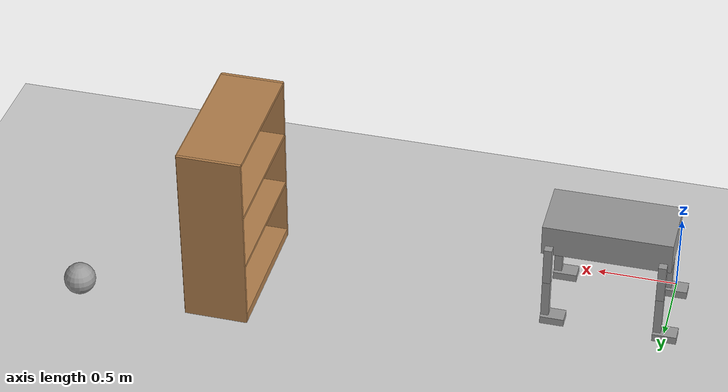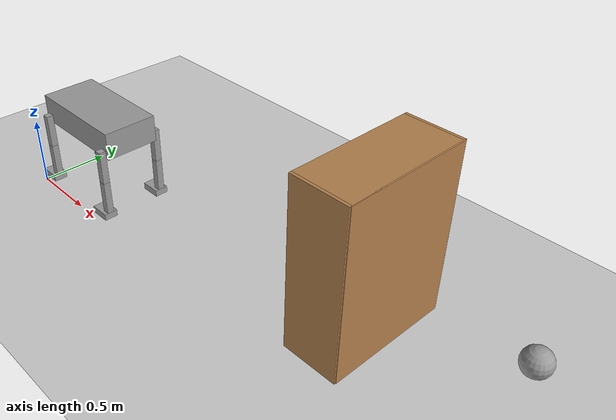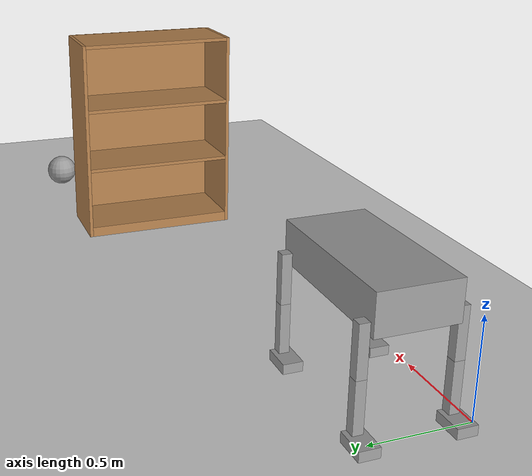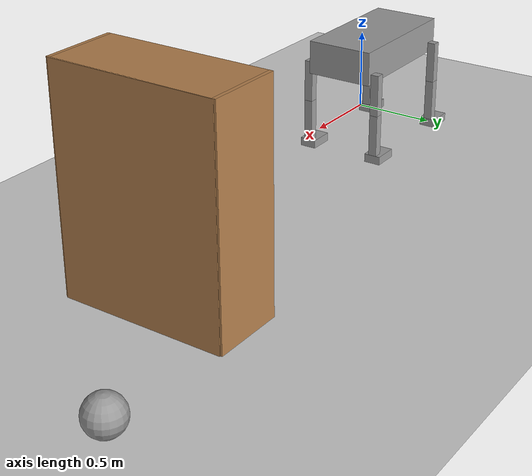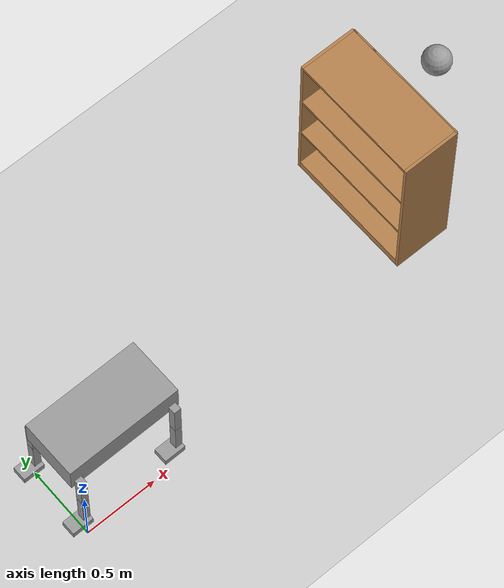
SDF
<sdf version="1.6">
 <world name="default">
  <model name="ground_plane">
   <static>1</static>
   <link name="link">
    <collision name="collision">
     <geometry><plane><normal>0 0 1</normal><size>100 100</size></plane></geometry>
     <surface><friction><ode><mu>100</mu><mu2>50</mu2></ode></friction></surface>
    </collision>
    <visual name="visual">
     <cast_shadows>0</cast_shadows>
     <geometry><plane><normal>0 0 1</normal><size>100 100</size></plane></geometry>
     <material>
      <script><uri>file://media/materials/scripts/gazebo.material</uri><name>Gazebo/Grey</name></script>
     </material>
    </visual>
   </link>
  </model>
  <model name="bookshelf">
   <static>1</static>
   <link name="link">
    <inertial><mass>1</mass></inertial>
    <collision name="back">
     <pose>0 0.005 0.6 0 -0 0</pose>
     <geometry><box><size>0.9 0.01 1.2</size></box></geometry>
    </collision>
    <visual name="visual1">
     <pose>0 0.005 0.6 0 -0 0</pose>
     <geometry><box><size>0.9 0.01 1.2</size></box></geometry>
     <material>
      <script><uri>file://media/materials/scripts/gazebo.material</uri><name>Gazebo/Wood</name></script>
     </material>
    </visual>
    <collision name="left_side">
     <pose>0.45 -0.195 0.6 0 -0 0</pose>
     <geometry><box><size>0.02 0.4 1.2</size></box></geometry>
    </collision>
    <visual name="visual2">
     <pose>0.45 -0.195 0.6 0 -0 0</pose>
     <geometry><box><size>0.02 0.4 1.2</size></box></geometry>
     <material>
      <script><uri>file://media/materials/scripts/gazebo.material</uri><name>Gazebo/Wood</name></script>
     </material>
    </visual>
    <collision name="right_side">
     <pose>-0.45 -0.195 0.6 0 -0 0</pose>
     <geometry><box><size>0.02 0.4 1.2</size></box></geometry>
    </collision>
    <visual name="visual3">
     <pose>-0.45 -0.195 0.6 0 -0 0</pose>
     <geometry><box><size>0.02 0.4 1.2</size></box></geometry>
     <material>
      <script><uri>file://media/materials/scripts/gazebo.material</uri><name>Gazebo/Wood</name></script>
     </material>
    </visual>
    <collision name="bottom">
     <pose>0 -0.195 0.03 0 -0 0</pose>
     <geometry><box><size>0.88 0.4 0.06</size></box></geometry>
    </collision>
    <visual name="visual4">
     <pose>0 -0.195 0.03 0 -0 0</pose>
     <geometry><box><size>0.88 0.4 0.06</size></box></geometry>
     <material>
      <script><uri>file://media/materials/scripts/gazebo.material</uri><name>Gazebo/Wood</name></script>
     </material>
    </visual>
    <collision name="top">
     <pose>0 -0.195 1.19 0 -0 0</pose>
     <geometry><box><size>0.88 0.4 0.02</size></box></geometry>
    </collision>
    <visual name="visual5">
     <pose>0 -0.195 1.19 0 -0 0</pose>
     <geometry><box><size>0.88 0.4 0.02</size></box></geometry>
     <material>
      <script><uri>file://media/materials/scripts/gazebo.material</uri><name>Gazebo/Wood</name></script>
     </material>
    </visual>
    <collision name="low_shelf">
     <pose>0 -0.195 0.43 0 -0 0</pose>
     <geometry><box><size>0.88 0.4 0.02</size></box></geometry>
    </collision>
    <visual name="visual6">
     <pose>0 -0.195 0.43 0 -0 0</pose>
     <geometry><box><size>0.88 0.4 0.02</size></box></geometry>
     <material>
      <script><uri>file://media/materials/scripts/gazebo.material</uri><name>Gazebo/Wood</name></script>
     </material>
    </visual>
    <collision name="high_shelf">
     <pose>0 -0.195 0.8 0 -0 0</pose>
     <geometry><box><size>0.88 0.4 0.02</size></box></geometry>
    </collision>
    <visual name="visual7">
     <pose>0 -0.195 0.8 0 -0 0</pose>
     <geometry><box><size>0.88 0.4 0.02</size></box></geometry>
     <material>
      <script><uri>file://media/materials/scripts/gazebo.material</uri><name>Gazebo/Wood</name></script>
     </material>
    </visual>
   </link>
   <pose>2.91289 0.586626 0 0 0 -1.5708</pose>
  </model>
  <model name="robot_0">
   <link name="link_0">
    <pose>-0 -5 1 0 -0 0</pose>
    <inertial>
     <mass>1</mass>
     <inertia>
      <ixx>0.166667</ixx>
      <ixy>0</ixy>
      <ixz>0</ixz>
      <iyy>0.166667</iyy>
      <iyz>0</iyz>
      <izz>0.166667</izz>
     </inertia>
    </inertial>
    <visual name="visual">
     <geometry><box><size>0.8 0.4 0.2</size></box></geometry>
     <material>
      <lighting>1</lighting>
      <script><uri>file://media/materials/scripts/gazebo.material</uri><name>Gazebo/Grey</name></script>
      <shader type="pixel"><normal_map>__default__</normal_map></shader>
      <ambient>0.3 0.3 0.3 1</ambient>
      <diffuse>0.7 0.7 0.7 1</diffuse>
      <specular>0.01 0.01 0.01 1</specular>
      <emissive>0 0 0 1</emissive>
     </material>
    </visual>
    <collision name="collision">
     <geometry><box><size>0.8 0.4 0.2</size></box></geometry>
     <surface>
      <friction>
       <ode><mu>1</mu><mu2>1</mu2><fdir1>0 0 0</fdir1><slip1>0</slip1><slip2>0</slip2></ode>
       <torsional>
        <coefficient>1</coefficient>
        <patch_radius>0</patch_radius>
        <surface_radius>0</surface_radius>
        <use_patch_radius>1</use_patch_radius>
        <ode><slip>0</slip></ode>
       </torsional>
      </friction>
      <bounce><restitution_coefficient>0</restitution_coefficient><threshold>1e+06</threshold></bounce>
      <contact>
       <collide_without_contact>0</collide_without_contact>
       <collide_without_contact_bitmask>1</collide_without_contact_bitmask>
       <collide_bitmask>1</collide_bitmask>
       <ode>
        <soft_cfm>0</soft_cfm>
        <soft_erp>0.2</soft_erp>
        <kp>1e+13</kp>
        <kd>1</kd>
        <max_vel>0.01</max_vel>
        <min_depth>0</min_depth>
       </ode>
       <bullet>
        <split_impulse>1</split_impulse>
        <split_impulse_penetration_threshold>-0.01</split_impulse_penetration_threshold>
        <soft_cfm>0</soft_cfm>
        <soft_erp>0.2</soft_erp>
        <kp>1e+13</kp>
        <kd>1</kd>
       </bullet>
      </contact>
     </surface>
    </collision>
   </link>
   <link name="link_0_0">
    <pose>-0.4 -5.225 0.4375 0 -0 0</pose>
    <inertial>
     <mass>1</mass>
     <inertia>
      <ixx>0.166667</ixx>
      <ixy>0</ixy>
      <ixz>0</ixz>
      <iyy>0.166667</iyy>
      <iyz>0</iyz>
      <izz>0.166667</izz>
     </inertia>
    </inertial>
    <visual name="visual">
     <geometry><box><size>0.15 0.1 0.05</size></box></geometry>
     <material>
      <lighting>1</lighting>
      <script><uri>file://media/materials/scripts/gazebo.material</uri><name>Gazebo/Grey</name></script>
      <shader type="pixel"><normal_map>__default__</normal_map></shader>
      <ambient>0.3 0.3 0.3 1</ambient>
      <diffuse>0.7 0.7 0.7 1</diffuse>
      <specular>0.01 0.01 0.01 1</specular>
      <emissive>0 0 0 1</emissive>
     </material>
    </visual>
    <collision name="collision">
     <geometry><box><size>0.15 0.1 0.05</size></box></geometry>
     <surface>
      <friction>
       <ode><mu>1</mu><mu2>1</mu2><fdir1>0 0 0</fdir1><slip1>0</slip1><slip2>0</slip2></ode>
       <torsional>
        <coefficient>1</coefficient>
        <patch_radius>0</patch_radius>
        <surface_radius>0</surface_radius>
        <use_patch_radius>1</use_patch_radius>
        <ode><slip>0</slip></ode>
       </torsional>
      </friction>
      <bounce><restitution_coefficient>0</restitution_coefficient><threshold>1e+06</threshold></bounce>
      <contact>
       <collide_without_contact>0</collide_without_contact>
       <collide_without_contact_bitmask>1</collide_without_contact_bitmask>
       <collide_bitmask>1</collide_bitmask>
       <ode>
        <soft_cfm>0</soft_cfm>
        <soft_erp>0.2</soft_erp>
        <kp>1e+13</kp>
        <kd>1</kd>
        <max_vel>0.01</max_vel>
        <min_depth>0</min_depth>
       </ode>
       <bullet>
        <split_impulse>1</split_impulse>
        <split_impulse_penetration_threshold>-0.01</split_impulse_penetration_threshold>
        <soft_cfm>0</soft_cfm>
        <soft_erp>0.2</soft_erp>
        <kp>1e+13</kp>
        <kd>1</kd>
       </bullet>
      </contact>
     </surface>
    </collision>
   </link>
   <link name="link_0_0_clone">
    <pose>-0.4 -4.775 0.4375 0 -0 0</pose>
    <inertial>
     <mass>1</mass>
     <inertia>
      <ixx>0.166667</ixx>
      <ixy>0</ixy>
      <ixz>0</ixz>
      <iyy>0.166667</iyy>
      <iyz>0</iyz>
      <izz>0.166667</izz>
     </inertia>
    </inertial>
    <visual name="visual_0">
     <geometry><box><size>0.15 0.1 0.05</size></box></geometry>
     <material>
      <lighting>1</lighting>
      <script><uri>file://media/materials/scripts/gazebo.material</uri><name>Gazebo/Grey</name></script>
      <shader type="pixel"><normal_map>__default__</normal_map></shader>
      <ambient>0.3 0.3 0.3 1</ambient>
      <diffuse>0.7 0.7 0.7 1</diffuse>
      <specular>0.01 0.01 0.01 1</specular>
      <emissive>0 0 0 1</emissive>
     </material>
    </visual>
    <collision name="collision">
     <geometry><box><size>0.15 0.1 0.05</size></box></geometry>
     <surface>
      <friction>
       <ode><mu>1</mu><mu2>1</mu2><fdir1>0 0 0</fdir1><slip1>0</slip1><slip2>0</slip2></ode>
       <torsional>
        <coefficient>1</coefficient>
        <patch_radius>0</patch_radius>
        <surface_radius>0</surface_radius>
        <use_patch_radius>1</use_patch_radius>
        <ode><slip>0</slip></ode>
       </torsional>
      </friction>
      <bounce><restitution_coefficient>0</restitution_coefficient><threshold>1e+06</threshold></bounce>
      <contact>
       <collide_without_contact>0</collide_without_contact>
       <collide_without_contact_bitmask>1</collide_without_contact_bitmask>
       <collide_bitmask>1</collide_bitmask>
       <ode>
        <soft_cfm>0</soft_cfm>
        <soft_erp>0.2</soft_erp>
        <kp>1e+13</kp>
        <kd>1</kd>
        <max_vel>0.01</max_vel>
        <min_depth>0</min_depth>
       </ode>
       <bullet>
        <split_impulse>1</split_impulse>
        <split_impulse_penetration_threshold>-0.01</split_impulse_penetration_threshold>
        <soft_cfm>0</soft_cfm>
        <soft_erp>0.2</soft_erp>
        <kp>1e+13</kp>
        <kd>1</kd>
       </bullet>
      </contact>
     </surface>
    </collision>
   </link>
   <link name="link_0_0_clone_0">
    <pose>0.3 -5.225 0.4375 0 -0 0</pose>
    <inertial>
     <mass>1</mass>
     <inertia>
      <ixx>0.166667</ixx>
      <ixy>0</ixy>
      <ixz>0</ixz>
      <iyy>0.166667</iyy>
      <iyz>0</iyz>
      <izz>0.166667</izz>
     </inertia>
    </inertial>
    <visual name="visual_0">
     <geometry><box><size>0.15 0.1 0.05</size></box></geometry>
     <material>
      <lighting>1</lighting>
      <script><uri>file://media/materials/scripts/gazebo.material</uri><name>Gazebo/Grey</name></script>
      <shader type="pixel"><normal_map>__default__</normal_map></shader>
      <ambient>0.3 0.3 0.3 1</ambient>
      <diffuse>0.7 0.7 0.7 1</diffuse>
      <specular>0.01 0.01 0.01 1</specular>
      <emissive>0 0 0 1</emissive>
     </material>
    </visual>
    <collision name="collision">
     <geometry><box><size>0.15 0.1 0.05</size></box></geometry>
     <surface>
      <friction>
       <ode><mu>1</mu><mu2>1</mu2><fdir1>0 0 0</fdir1><slip1>0</slip1><slip2>0</slip2></ode>
       <torsional>
        <coefficient>1</coefficient>
        <patch_radius>0</patch_radius>
        <surface_radius>0</surface_radius>
        <use_patch_radius>1</use_patch_radius>
        <ode><slip>0</slip></ode>
       </torsional>
      </friction>
      <bounce><restitution_coefficient>0</restitution_coefficient><threshold>1e+06</threshold></bounce>
      <contact>
       <collide_without_contact>0</collide_without_contact>
       <collide_without_contact_bitmask>1</collide_without_contact_bitmask>
       <collide_bitmask>1</collide_bitmask>
       <ode>
        <soft_cfm>0</soft_cfm>
        <soft_erp>0.2</soft_erp>
        <kp>1e+13</kp>
        <kd>1</kd>
        <max_vel>0.01</max_vel>
        <min_depth>0</min_depth>
       </ode>
       <bullet>
        <split_impulse>1</split_impulse>
        <split_impulse_penetration_threshold>-0.01</split_impulse_penetration_threshold>
        <soft_cfm>0</soft_cfm>
        <soft_erp>0.2</soft_erp>
        <kp>1e+13</kp>
        <kd>1</kd>
       </bullet>
      </contact>
     </surface>
    </collision>
   </link>
   <link name="link_0_0_clone_0_clone">
    <pose>0.3 -4.775 0.4375 0 -0 0</pose>
    <inertial>
     <mass>1</mass>
     <inertia>
      <ixx>0.166667</ixx>
      <ixy>0</ixy>
      <ixz>0</ixz>
      <iyy>0.166667</iyy>
      <iyz>0</iyz>
      <izz>0.166667</izz>
     </inertia>
    </inertial>
    <visual name="visual_0">
     <geometry><box><size>0.15 0.1 0.05</size></box></geometry>
     <material>
      <lighting>1</lighting>
      <script><uri>file://media/materials/scripts/gazebo.material</uri><name>Gazebo/Grey</name></script>
      <shader type="pixel"><normal_map>__default__</normal_map></shader>
      <ambient>0.3 0.3 0.3 1</ambient>
      <diffuse>0.7 0.7 0.7 1</diffuse>
      <specular>0.01 0.01 0.01 1</specular>
      <emissive>0 0 0 1</emissive>
     </material>
    </visual>
    <collision name="collision">
     <geometry><box><size>0.15 0.1 0.05</size></box></geometry>
     <surface>
      <friction>
       <ode><mu>1</mu><mu2>1</mu2><fdir1>0 0 0</fdir1><slip1>0</slip1><slip2>0</slip2></ode>
       <torsional>
        <coefficient>1</coefficient>
        <patch_radius>0</patch_radius>
        <surface_radius>0</surface_radius>
        <use_patch_radius>1</use_patch_radius>
        <ode><slip>0</slip></ode>
       </torsional>
      </friction>
      <bounce><restitution_coefficient>0</restitution_coefficient><threshold>1e+06</threshold></bounce>
      <contact>
       <collide_without_contact>0</collide_without_contact>
       <collide_without_contact_bitmask>1</collide_without_contact_bitmask>
       <collide_bitmask>1</collide_bitmask>
       <ode>
        <soft_cfm>0</soft_cfm>
        <soft_erp>0.2</soft_erp>
        <kp>1e+13</kp>
        <kd>1</kd>
        <max_vel>0.01</max_vel>
        <min_depth>0</min_depth>
       </ode>
       <bullet>
        <split_impulse>1</split_impulse>
        <split_impulse_penetration_threshold>-0.01</split_impulse_penetration_threshold>
        <soft_cfm>0</soft_cfm>
        <soft_erp>0.2</soft_erp>
        <kp>1e+13</kp>
        <kd>1</kd>
       </bullet>
      </contact>
     </surface>
    </collision>
   </link>
   <link name="link_2_clone_clone">
    <pose>-0.35 -5.225 0.8375 0 -0 0</pose>
    <inertial>
     <mass>1</mass>
     <inertia>
      <ixx>0.166667</ixx>
      <ixy>0</ixy>
      <ixz>0</ixz>
      <iyy>0.166667</iyy>
      <iyz>0</iyz>
      <izz>0.166667</izz>
     </inertia>
    </inertial>
    <visual name="visual">
     <geometry><box><size>0.05 0.05 0.25</size></box></geometry>
     <material>
      <lighting>1</lighting>
      <script><uri>file://media/materials/scripts/gazebo.material</uri><name>Gazebo/Grey</name></script>
      <shader type="pixel"><normal_map>__default__</normal_map></shader>
      <ambient>0.3 0.3 0.3 1</ambient>
      <diffuse>0.7 0.7 0.7 1</diffuse>
      <specular>0.01 0.01 0.01 1</specular>
      <emissive>0 0 0 1</emissive>
     </material>
    </visual>
    <collision name="collision">
     <geometry><box><size>0.05 0.05 0.25</size></box></geometry>
     <surface>
      <friction>
       <ode><mu>1</mu><mu2>1</mu2><fdir1>0 0 0</fdir1><slip1>0</slip1><slip2>0</slip2></ode>
       <torsional>
        <coefficient>1</coefficient>
        <patch_radius>0</patch_radius>
        <surface_radius>0</surface_radius>
        <use_patch_radius>1</use_patch_radius>
        <ode><slip>0</slip></ode>
       </torsional>
      </friction>
      <bounce><restitution_coefficient>0</restitution_coefficient><threshold>1e+06</threshold></bounce>
      <contact>
       <collide_without_contact>0</collide_without_contact>
       <collide_without_contact_bitmask>1</collide_without_contact_bitmask>
       <collide_bitmask>1</collide_bitmask>
       <ode>
        <soft_cfm>0</soft_cfm>
        <soft_erp>0.2</soft_erp>
        <kp>1e+13</kp>
        <kd>1</kd>
        <max_vel>0.01</max_vel>
        <min_depth>0</min_depth>
       </ode>
       <bullet>
        <split_impulse>1</split_impulse>
        <split_impulse_penetration_threshold>-0.01</split_impulse_penetration_threshold>
        <soft_cfm>0</soft_cfm>
        <soft_erp>0.2</soft_erp>
        <kp>1e+13</kp>
        <kd>1</kd>
       </bullet>
      </contact>
     </surface>
    </collision>
   </link>
   <link name="link_2_clone_clone_clone">
    <pose>0.35 -5.225 0.8375 0 -0 0</pose>
    <inertial>
     <mass>1</mass>
     <inertia>
      <ixx>0.166667</ixx>
      <ixy>0</ixy>
      <ixz>0</ixz>
      <iyy>0.166667</iyy>
      <iyz>0</iyz>
      <izz>0.166667</izz>
     </inertia>
    </inertial>
    <visual name="visual">
     <geometry><box><size>0.05 0.05 0.25</size></box></geometry>
     <material>
      <lighting>1</lighting>
      <script><uri>file://media/materials/scripts/gazebo.material</uri><name>Gazebo/Grey</name></script>
      <shader type="pixel"><normal_map>__default__</normal_map></shader>
      <ambient>0.3 0.3 0.3 1</ambient>
      <diffuse>0.7 0.7 0.7 1</diffuse>
      <specular>0.01 0.01 0.01 1</specular>
      <emissive>0 0 0 1</emissive>
     </material>
    </visual>
    <collision name="collision">
     <geometry><box><size>0.05 0.05 0.25</size></box></geometry>
     <surface>
      <friction>
       <ode><mu>1</mu><mu2>1</mu2><fdir1>0 0 0</fdir1><slip1>0</slip1><slip2>0</slip2></ode>
       <torsional>
        <coefficient>1</coefficient>
        <patch_radius>0</patch_radius>
        <surface_radius>0</surface_radius>
        <use_patch_radius>1</use_patch_radius>
        <ode><slip>0</slip></ode>
       </torsional>
      </friction>
      <bounce><restitution_coefficient>0</restitution_coefficient><threshold>1e+06</threshold></bounce>
      <contact>
       <collide_without_contact>0</collide_without_contact>
       <collide_without_contact_bitmask>1</collide_without_contact_bitmask>
       <collide_bitmask>1</collide_bitmask>
       <ode>
        <soft_cfm>0</soft_cfm>
        <soft_erp>0.2</soft_erp>
        <kp>1e+13</kp>
        <kd>1</kd>
        <max_vel>0.01</max_vel>
        <min_depth>0</min_depth>
       </ode>
       <bullet>
        <split_impulse>1</split_impulse>
        <split_impulse_penetration_threshold>-0.01</split_impulse_penetration_threshold>
        <soft_cfm>0</soft_cfm>
        <soft_erp>0.2</soft_erp>
        <kp>1e+13</kp>
        <kd>1</kd>
       </bullet>
      </contact>
     </surface>
    </collision>
   </link>
   <link name="link_2_clone_clone_clone_0">
    <pose>-0.35 -4.775 0.8375 0 -0 0</pose>
    <inertial>
     <mass>1</mass>
     <inertia>
      <ixx>0.166667</ixx>
      <ixy>0</ixy>
      <ixz>0</ixz>
      <iyy>0.166667</iyy>
      <iyz>0</iyz>
      <izz>0.166667</izz>
     </inertia>
    </inertial>
    <visual name="visual">
     <geometry><box><size>0.05 0.05 0.25</size></box></geometry>
     <material>
      <lighting>1</lighting>
      <script><uri>file://media/materials/scripts/gazebo.material</uri><name>Gazebo/Grey</name></script>
      <shader type="pixel"><normal_map>__default__</normal_map></shader>
      <ambient>0.3 0.3 0.3 1</ambient>
      <diffuse>0.7 0.7 0.7 1</diffuse>
      <specular>0.01 0.01 0.01 1</specular>
      <emissive>0 0 0 1</emissive>
     </material>
    </visual>
    <collision name="collision">
     <geometry><box><size>0.05 0.05 0.25</size></box></geometry>
     <surface>
      <friction>
       <ode><mu>1</mu><mu2>1</mu2><fdir1>0 0 0</fdir1><slip1>0</slip1><slip2>0</slip2></ode>
       <torsional>
        <coefficient>1</coefficient>
        <patch_radius>0</patch_radius>
        <surface_radius>0</surface_radius>
        <use_patch_radius>1</use_patch_radius>
        <ode><slip>0</slip></ode>
       </torsional>
      </friction>
      <bounce><restitution_coefficient>0</restitution_coefficient><threshold>1e+06</threshold></bounce>
      <contact>
       <collide_without_contact>0</collide_without_contact>
       <collide_without_contact_bitmask>1</collide_without_contact_bitmask>
       <collide_bitmask>1</collide_bitmask>
       <ode>
        <soft_cfm>0</soft_cfm>
        <soft_erp>0.2</soft_erp>
        <kp>1e+13</kp>
        <kd>1</kd>
        <max_vel>0.01</max_vel>
        <min_depth>0</min_depth>
       </ode>
       <bullet>
        <split_impulse>1</split_impulse>
        <split_impulse_penetration_threshold>-0.01</split_impulse_penetration_threshold>
        <soft_cfm>0</soft_cfm>
        <soft_erp>0.2</soft_erp>
        <kp>1e+13</kp>
        <kd>1</kd>
       </bullet>
      </contact>
     </surface>
    </collision>
   </link>
   <link name="link_2_clone_clone_clone_0_clone">
    <pose>0.35 -4.775 0.8375 0 -0 0</pose>
    <inertial>
     <mass>1</mass>
     <inertia>
      <ixx>0.166667</ixx>
      <ixy>0</ixy>
      <ixz>0</ixz>
      <iyy>0.166667</iyy>
      <iyz>0</iyz>
      <izz>0.166667</izz>
     </inertia>
    </inertial>
    <visual name="visual">
     <geometry><box><size>0.05 0.05 0.25</size></box></geometry>
     <material>
      <lighting>1</lighting>
      <script><uri>file://media/materials/scripts/gazebo.material</uri><name>Gazebo/Grey</name></script>
      <shader type="pixel"><normal_map>__default__</normal_map></shader>
      <ambient>0.3 0.3 0.3 1</ambient>
      <diffuse>0.7 0.7 0.7 1</diffuse>
      <specular>0.01 0.01 0.01 1</specular>
      <emissive>0 0 0 1</emissive>
     </material>
    </visual>
    <collision name="collision">
     <geometry><box><size>0.05 0.05 0.25</size></box></geometry>
     <surface>
      <friction>
       <ode><mu>1</mu><mu2>1</mu2><fdir1>0 0 0</fdir1><slip1>0</slip1><slip2>0</slip2></ode>
       <torsional>
        <coefficient>1</coefficient>
        <patch_radius>0</patch_radius>
        <surface_radius>0</surface_radius>
        <use_patch_radius>1</use_patch_radius>
        <ode><slip>0</slip></ode>
       </torsional>
      </friction>
      <bounce><restitution_coefficient>0</restitution_coefficient><threshold>1e+06</threshold></bounce>
      <contact>
       <collide_without_contact>0</collide_without_contact>
       <collide_without_contact_bitmask>1</collide_without_contact_bitmask>
       <collide_bitmask>1</collide_bitmask>
       <ode>
        <soft_cfm>0</soft_cfm>
        <soft_erp>0.2</soft_erp>
        <kp>1e+13</kp>
        <kd>1</kd>
        <max_vel>0.01</max_vel>
        <min_depth>0</min_depth>
       </ode>
       <bullet>
        <split_impulse>1</split_impulse>
        <split_impulse_penetration_threshold>-0.01</split_impulse_penetration_threshold>
        <soft_cfm>0</soft_cfm>
        <soft_erp>0.2</soft_erp>
        <kp>1e+13</kp>
        <kd>1</kd>
       </bullet>
      </contact>
     </surface>
    </collision>
   </link>
   <link name="link_2_clone_clone_clone_1">
    <pose>-0.35 -5.225 0.5875 0 -0 0</pose>
    <inertial>
     <mass>1</mass>
     <inertia>
      <ixx>0.166667</ixx>
      <ixy>0</ixy>
      <ixz>0</ixz>
      <iyy>0.166667</iyy>
      <iyz>0</iyz>
      <izz>0.166667</izz>
     </inertia>
    </inertial>
    <visual name="visual">
     <geometry><box><size>0.05 0.05 0.25</size></box></geometry>
     <material>
      <lighting>1</lighting>
      <script><uri>file://media/materials/scripts/gazebo.material</uri><name>Gazebo/Grey</name></script>
      <shader type="pixel"><normal_map>__default__</normal_map></shader>
      <ambient>0.3 0.3 0.3 1</ambient>
      <diffuse>0.7 0.7 0.7 1</diffuse>
      <specular>0.01 0.01 0.01 1</specular>
      <emissive>0 0 0 1</emissive>
     </material>
    </visual>
    <collision name="collision">
     <geometry><box><size>0.05 0.05 0.25</size></box></geometry>
     <surface>
      <friction>
       <ode><mu>1</mu><mu2>1</mu2><fdir1>0 0 0</fdir1><slip1>0</slip1><slip2>0</slip2></ode>
       <torsional>
        <coefficient>1</coefficient>
        <patch_radius>0</patch_radius>
        <surface_radius>0</surface_radius>
        <use_patch_radius>1</use_patch_radius>
        <ode><slip>0</slip></ode>
       </torsional>
      </friction>
      <bounce><restitution_coefficient>0</restitution_coefficient><threshold>1e+06</threshold></bounce>
      <contact>
       <collide_without_contact>0</collide_without_contact>
       <collide_without_contact_bitmask>1</collide_without_contact_bitmask>
       <collide_bitmask>1</collide_bitmask>
       <ode>
        <soft_cfm>0</soft_cfm>
        <soft_erp>0.2</soft_erp>
        <kp>1e+13</kp>
        <kd>1</kd>
        <max_vel>0.01</max_vel>
        <min_depth>0</min_depth>
       </ode>
       <bullet>
        <split_impulse>1</split_impulse>
        <split_impulse_penetration_threshold>-0.01</split_impulse_penetration_threshold>
        <soft_cfm>0</soft_cfm>
        <soft_erp>0.2</soft_erp>
        <kp>1e+13</kp>
        <kd>1</kd>
       </bullet>
      </contact>
     </surface>
    </collision>
   </link>
   <link name="link_2_clone_clone_clone_2">
    <pose>0.35 -5.225 0.5875 0 -0 0</pose>
    <inertial>
     <mass>1</mass>
     <inertia>
      <ixx>0.166667</ixx>
      <ixy>0</ixy>
      <ixz>0</ixz>
      <iyy>0.166667</iyy>
      <iyz>0</iyz>
      <izz>0.166667</izz>
     </inertia>
    </inertial>
    <visual name="visual">
     <geometry><box><size>0.05 0.05 0.25</size></box></geometry>
     <material>
      <lighting>1</lighting>
      <script><uri>file://media/materials/scripts/gazebo.material</uri><name>Gazebo/Grey</name></script>
      <shader type="pixel"><normal_map>__default__</normal_map></shader>
      <ambient>0.3 0.3 0.3 1</ambient>
      <diffuse>0.7 0.7 0.7 1</diffuse>
      <specular>0.01 0.01 0.01 1</specular>
      <emissive>0 0 0 1</emissive>
     </material>
    </visual>
    <collision name="collision">
     <geometry><box><size>0.05 0.05 0.25</size></box></geometry>
     <surface>
      <friction>
       <ode><mu>1</mu><mu2>1</mu2><fdir1>0 0 0</fdir1><slip1>0</slip1><slip2>0</slip2></ode>
       <torsional>
        <coefficient>1</coefficient>
        <patch_radius>0</patch_radius>
        <surface_radius>0</surface_radius>
        <use_patch_radius>1</use_patch_radius>
        <ode><slip>0</slip></ode>
       </torsional>
      </friction>
      <bounce><restitution_coefficient>0</restitution_coefficient><threshold>1e+06</threshold></bounce>
      <contact>
       <collide_without_contact>0</collide_without_contact>
       <collide_without_contact_bitmask>1</collide_without_contact_bitmask>
       <collide_bitmask>1</collide_bitmask>
       <ode>
        <soft_cfm>0</soft_cfm>
        <soft_erp>0.2</soft_erp>
        <kp>1e+13</kp>
        <kd>1</kd>
        <max_vel>0.01</max_vel>
        <min_depth>0</min_depth>
       </ode>
       <bullet>
        <split_impulse>1</split_impulse>
        <split_impulse_penetration_threshold>-0.01</split_impulse_penetration_threshold>
        <soft_cfm>0</soft_cfm>
        <soft_erp>0.2</soft_erp>
        <kp>1e+13</kp>
        <kd>1</kd>
       </bullet>
      </contact>
     </surface>
    </collision>
   </link>
   <link name="link_2_clone_clone_clone_2_clone">
    <pose>0.35 -4.775 0.5875 0 -0 0</pose>
    <inertial>
     <mass>1</mass>
     <inertia>
      <ixx>0.166667</ixx>
      <ixy>0</ixy>
      <ixz>0</ixz>
      <iyy>0.166667</iyy>
      <iyz>0</iyz>
      <izz>0.166667</izz>
     </inertia>
    </inertial>
    <visual name="visual">
     <geometry><box><size>0.05 0.05 0.25</size></box></geometry>
     <material>
      <lighting>1</lighting>
      <script><uri>file://media/materials/scripts/gazebo.material</uri><name>Gazebo/Grey</name></script>
      <shader type="pixel"><normal_map>__default__</normal_map></shader>
      <ambient>0.3 0.3 0.3 1</ambient>
      <diffuse>0.7 0.7 0.7 1</diffuse>
      <specular>0.01 0.01 0.01 1</specular>
      <emissive>0 0 0 1</emissive>
     </material>
    </visual>
    <collision name="collision">
     <geometry><box><size>0.05 0.05 0.25</size></box></geometry>
     <surface>
      <friction>
       <ode><mu>1</mu><mu2>1</mu2><fdir1>0 0 0</fdir1><slip1>0</slip1><slip2>0</slip2></ode>
       <torsional>
        <coefficient>1</coefficient>
        <patch_radius>0</patch_radius>
        <surface_radius>0</surface_radius>
        <use_patch_radius>1</use_patch_radius>
        <ode><slip>0</slip></ode>
       </torsional>
      </friction>
      <bounce><restitution_coefficient>0</restitution_coefficient><threshold>1e+06</threshold></bounce>
      <contact>
       <collide_without_contact>0</collide_without_contact>
       <collide_without_contact_bitmask>1</collide_without_contact_bitmask>
       <collide_bitmask>1</collide_bitmask>
       <ode>
        <soft_cfm>0</soft_cfm>
        <soft_erp>0.2</soft_erp>
        <kp>1e+13</kp>
        <kd>1</kd>
        <max_vel>0.01</max_vel>
        <min_depth>0</min_depth>
       </ode>
       <bullet>
        <split_impulse>1</split_impulse>
        <split_impulse_penetration_threshold>-0.01</split_impulse_penetration_threshold>
        <soft_cfm>0</soft_cfm>
        <soft_erp>0.2</soft_erp>
        <kp>1e+13</kp>
        <kd>1</kd>
       </bullet>
      </contact>
     </surface>
    </collision>
   </link>
   <link name="link_2_clone_clone_clone_2_clone_clone">
    <pose>-0.35 -4.775 0.5875 0 -0 0</pose>
    <inertial>
     <mass>1</mass>
     <inertia>
      <ixx>0.166667</ixx>
      <ixy>0</ixy>
      <ixz>0</ixz>
      <iyy>0.166667</iyy>
      <iyz>0</iyz>
      <izz>0.166667</izz>
     </inertia>
    </inertial>
    <visual name="visual">
     <geometry><box><size>0.05 0.05 0.25</size></box></geometry>
     <material>
      <lighting>1</lighting>
      <script><uri>file://media/materials/scripts/gazebo.material</uri><name>Gazebo/Grey</name></script>
      <shader type="pixel"><normal_map>__default__</normal_map></shader>
      <ambient>0.3 0.3 0.3 1</ambient>
      <diffuse>0.7 0.7 0.7 1</diffuse>
      <specular>0.01 0.01 0.01 1</specular>
      <emissive>0 0 0 1</emissive>
     </material>
    </visual>
    <collision name="collision">
     <geometry><box><size>0.05 0.05 0.25</size></box></geometry>
     <surface>
      <friction>
       <ode><mu>1</mu><mu2>1</mu2><fdir1>0 0 0</fdir1><slip1>0</slip1><slip2>0</slip2></ode>
       <torsional>
        <coefficient>1</coefficient>
        <patch_radius>0</patch_radius>
        <surface_radius>0</surface_radius>
        <use_patch_radius>1</use_patch_radius>
        <ode><slip>0</slip></ode>
       </torsional>
      </friction>
      <bounce><restitution_coefficient>0</restitution_coefficient><threshold>1e+06</threshold></bounce>
      <contact>
       <collide_without_contact>0</collide_without_contact>
       <collide_without_contact_bitmask>1</collide_without_contact_bitmask>
       <collide_bitmask>1</collide_bitmask>
       <ode>
        <soft_cfm>0</soft_cfm>
        <soft_erp>0.2</soft_erp>
        <kp>1e+13</kp>
        <kd>1</kd>
        <max_vel>0.01</max_vel>
        <min_depth>0</min_depth>
       </ode>
       <bullet>
        <split_impulse>1</split_impulse>
        <split_impulse_penetration_threshold>-0.01</split_impulse_penetration_threshold>
        <soft_cfm>0</soft_cfm>
        <soft_erp>0.2</soft_erp>
        <kp>1e+13</kp>
        <kd>1</kd>
       </bullet>
      </contact>
     </surface>
    </collision>
   </link>
   <joint name="link_0_JOINT_0_0" type="revolute">
    <parent>link_0</parent>
    <child>link_2_clone_clone_clone_0</child>
    <pose>0 0 0.09375 0 -0 0</pose>
    <axis>
     <xyz>0 1 0</xyz>
     <use_parent_model_frame>0</use_parent_model_frame>
     <limit><lower>-0.174533</lower><upper>0.174533</upper><effort>-1</effort><velocity>-1</velocity></limit>
     <dynamics>
      <spring_reference>0</spring_reference>
      <spring_stiffness>0</spring_stiffness>
      <damping>0</damping>
      <friction>0</friction>
     </dynamics>
    </axis>
    <physics>
     <ode><limit><cfm>0</cfm><erp>0.2</erp></limit><suspension><cfm>0</cfm><erp>0.2</erp></suspension></ode>
    </physics>
   </joint>
   <joint name="link_0_JOINT_0" type="revolute">
    <parent>link_0</parent>
    <child>link_2_clone_clone</child>
    <pose>0 0 0.09375 0 -0 0</pose>
    <axis>
     <xyz>0 -1 0</xyz>
     <use_parent_model_frame>0</use_parent_model_frame>
     <limit><lower>-0.174533</lower><upper>0.174533</upper><effort>-1</effort><velocity>-1</velocity></limit>
     <dynamics>
      <spring_reference>0</spring_reference>
      <spring_stiffness>0</spring_stiffness>
      <damping>0</damping>
      <friction>0</friction>
     </dynamics>
    </axis>
    <physics>
     <ode><limit><cfm>0</cfm><erp>0.2</erp></limit><suspension><cfm>0</cfm><erp>0.2</erp></suspension></ode>
    </physics>
   </joint>
   <joint name="link_0_JOINT_1" type="revolute">
    <parent>link_0</parent>
    <child>link_2_clone_clone_clone</child>
    <pose>0 0 0.09375 0 -0 0</pose>
    <axis>
     <xyz>0 -1 0</xyz>
     <use_parent_model_frame>0</use_parent_model_frame>
     <limit><lower>-0.174533</lower><upper>0.174533</upper><effort>-1</effort><velocity>-1</velocity></limit>
     <dynamics>
      <spring_reference>0</spring_reference>
      <spring_stiffness>0</spring_stiffness>
      <damping>0</damping>
      <friction>0</friction>
     </dynamics>
    </axis>
    <physics>
     <ode><limit><cfm>0</cfm><erp>0.2</erp></limit><suspension><cfm>0</cfm><erp>0.2</erp></suspension></ode>
    </physics>
   </joint>
   <joint name="link_0_JOINT_2" type="revolute">
    <parent>link_0</parent>
    <child>link_2_clone_clone_clone_0_clone</child>
    <pose>0 0 0.09375 0 -0 0</pose>
    <axis>
     <xyz>0 1 0</xyz>
     <use_parent_model_frame>0</use_parent_model_frame>
     <limit><lower>-0.174533</lower><upper>0.174533</upper><effort>-1</effort><velocity>-1</velocity></limit>
     <dynamics>
      <spring_reference>0</spring_reference>
      <spring_stiffness>0</spring_stiffness>
      <damping>0</damping>
      <friction>0</friction>
     </dynamics>
    </axis>
    <physics>
     <ode><limit><cfm>0</cfm><erp>0.2</erp></limit><suspension><cfm>0</cfm><erp>0.2</erp></suspension></ode>
    </physics>
   </joint>
   <joint name="link_2_clone_clone_JOINT_3" type="revolute">
    <parent>link_2_clone_clone</parent>
    <child>link_2_clone_clone_clone_1</child>
    <pose>0 0 0.125 0 -0 0</pose>
    <axis>
     <xyz>0 -1 0</xyz>
     <use_parent_model_frame>0</use_parent_model_frame>
     <limit><lower>-0.174533</lower><upper>0.174533</upper><effort>-1</effort><velocity>-1</velocity></limit>
     <dynamics>
      <spring_reference>0</spring_reference>
      <spring_stiffness>0</spring_stiffness>
      <damping>0</damping>
      <friction>0</friction>
     </dynamics>
    </axis>
    <physics>
     <ode><limit><cfm>0</cfm><erp>0.2</erp></limit><suspension><cfm>0</cfm><erp>0.2</erp></suspension></ode>
    </physics>
   </joint>
   <joint name="link_2_clone_clone_clone_0_JOINT_6" type="revolute">
    <parent>link_2_clone_clone_clone_0</parent>
    <child>link_2_clone_clone_clone_2_clone_clone</child>
    <pose>0 0 0.125 0 -0 0</pose>
    <axis>
     <xyz>0 1 0</xyz>
     <use_parent_model_frame>0</use_parent_model_frame>
     <limit><lower>-0.174533</lower><upper>0.174533</upper><effort>-1</effort><velocity>-1</velocity></limit>
     <dynamics>
      <spring_reference>0</spring_reference>
      <spring_stiffness>0</spring_stiffness>
      <damping>0</damping>
      <friction>0</friction>
     </dynamics>
    </axis>
    <physics>
     <ode><limit><cfm>0</cfm><erp>0.2</erp></limit><suspension><cfm>0</cfm><erp>0.2</erp></suspension></ode>
    </physics>
   </joint>
   <joint name="link_2_clone_clone_clone_0_clone_JOINT_5" type="revolute">
    <parent>link_2_clone_clone_clone_0_clone</parent>
    <child>link_2_clone_clone_clone_2_clone</child>
    <pose>0 0 0.125 0 -0 0</pose>
    <axis>
     <xyz>0 1 0</xyz>
     <use_parent_model_frame>0</use_parent_model_frame>
     <limit><lower>-0.174533</lower><upper>0.174533</upper><effort>-1</effort><velocity>-1</velocity></limit>
     <dynamics>
      <spring_reference>0</spring_reference>
      <spring_stiffness>0</spring_stiffness>
      <damping>0</damping>
      <friction>0</friction>
     </dynamics>
    </axis>
    <physics>
     <ode><limit><cfm>0</cfm><erp>0.2</erp></limit><suspension><cfm>0</cfm><erp>0.2</erp></suspension></ode>
    </physics>
   </joint>
   <joint name="link_2_clone_clone_clone_1_JOINT_7" type="fixed">
    <parent>link_2_clone_clone_clone_1</parent>
    <child>link_0_0</child>
    <physics>
     <ode><limit><cfm>0</cfm><erp>0.2</erp></limit><suspension><cfm>0</cfm><erp>0.2</erp></suspension></ode>
    </physics>
   </joint>
   <joint name="link_2_clone_clone_clone_2_JOINT_10" type="fixed">
    <parent>link_2_clone_clone_clone_2</parent>
    <child>link_0_0_clone_0</child>
    <physics>
     <ode><limit><cfm>0</cfm><erp>0.2</erp></limit><suspension><cfm>0</cfm><erp>0.2</erp></suspension></ode>
    </physics>
   </joint>
   <joint name="link_2_clone_clone_clone_2_clone_JOINT_9" type="fixed">
    <parent>link_2_clone_clone_clone_2_clone</parent>
    <child>link_0_0_clone_0_clone</child>
    <physics>
     <ode><limit><cfm>0</cfm><erp>0.2</erp></limit><suspension><cfm>0</cfm><erp>0.2</erp></suspension></ode>
    </physics>
   </joint>
   <joint name="link_2_clone_clone_clone_2_clone_clone_JOINT_8" type="fixed">
    <parent>link_2_clone_clone_clone_2_clone_clone</parent>
    <child>link_0_0_clone</child>
    <physics>
     <ode><limit><cfm>0</cfm><erp>0.2</erp></limit><suspension><cfm>0</cfm><erp>0.2</erp></suspension></ode>
    </physics>
   </joint>
   <joint name="link_2_clone_clone_clone_JOINT_4" type="revolute">
    <parent>link_2_clone_clone_clone</parent>
    <child>link_2_clone_clone_clone_2</child>
    <pose>0 0 0.125 0 -0 0</pose>
    <axis>
     <xyz>0 -1 0</xyz>
     <use_parent_model_frame>0</use_parent_model_frame>
     <limit><lower>-0.174533</lower><upper>0.174533</upper><effort>-1</effort><velocity>-1</velocity></limit>
     <dynamics>
      <spring_reference>0</spring_reference>
      <spring_stiffness>0</spring_stiffness>
      <damping>0</damping>
      <friction>0</friction>
     </dynamics>
    </axis>
    <physics>
     <ode><limit><cfm>0</cfm><erp>0.2</erp></limit><suspension><cfm>0</cfm><erp>0.2</erp></suspension></ode>
    </physics>
   </joint>
   <static>0</static>
   <pose>0.360938 5.30987 -0.415816 1e-06 0 0.006272</pose>
  </model>
  <model name="my_ball">
   <link name="link_0">
    <inertial>
     <mass>1</mass>
     <inertia><ixx>0.1</ixx><ixy>0</ixy><ixz>0</ixz><iyy>0.1</iyy><iyz>0</iyz><izz>0.1</izz></inertia>
    </inertial>
    <visual name="visual">
     <geometry><sphere><radius>0.1</radius></sphere></geometry>
     <material>
      <lighting>1</lighting>
      <script><uri>file://media/materials/scripts/gazebo.material</uri><name>Gazebo/Grey</name></script>
      <shader type="pixel"><normal_map>__default__</normal_map></shader>
      <ambient>1 1 1 1</ambient>
      <diffuse>1 1 1 1</diffuse>
      <specular>1 1 1 1</specular>
      <emissive>1 1 1 1</emissive>
     </material>
    </visual>
    <collision name="collision">
     <geometry><sphere><radius>0.1</radius></sphere></geometry>
     <surface>
      <friction>
       <ode><mu>1</mu><mu2>1</mu2><fdir1>0 0 0</fdir1><slip1>0</slip1><slip2>0</slip2></ode>
       <torsional>
        <coefficient>1</coefficient>
        <patch_radius>0</patch_radius>
        <surface_radius>0</surface_radius>
        <use_patch_radius>1</use_patch_radius>
        <ode><slip>0</slip></ode>
       </torsional>
      </friction>
      <bounce><restitution_coefficient>0</restitution_coefficient><threshold>1e+06</threshold></bounce>
      <contact>
       <collide_without_contact>0</collide_without_contact>
       <collide_without_contact_bitmask>1</collide_without_contact_bitmask>
       <collide_bitmask>1</collide_bitmask>
       <ode>
        <soft_cfm>0</soft_cfm>
        <soft_erp>0.2</soft_erp>
        <kp>1e+13</kp>
        <kd>1</kd>
        <max_vel>0.01</max_vel>
        <min_depth>0</min_depth>
       </ode>
       <bullet>
        <split_impulse>1</split_impulse>
        <split_impulse_penetration_threshold>-0.01</split_impulse_penetration_threshold>
        <soft_cfm>0</soft_cfm>
        <soft_erp>0.2</soft_erp>
        <kp>1e+13</kp>
        <kd>1</kd>
       </bullet>
      </contact>
     </surface>
    </collision>
   </link>
   <static>0</static>
   <pose>3.62002 1.00412 0.1 0 -0 0</pose>
  </model>
 </world>
</sdf>
